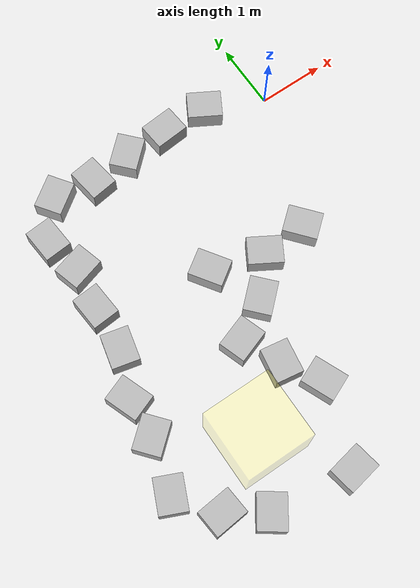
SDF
<sdf version="1.6">
 <world name="default">
  <model name="ground_plane">
   <static>1</static>
   <link name="link">
    <collision name="collision">
     <geometry><plane><normal>0 0 1</normal><size>100 100</size></plane></geometry>
     <surface><friction><ode><mu>100</mu><mu2>50</mu2></ode></friction></surface>
    </collision>
    <visual name="visual">
     <cast_shadows>0</cast_shadows>
     <geometry><plane><normal>0 0 1</normal><size>100 100</size></plane></geometry>
     <material>
      <script><uri>file://media/materials/scripts/gazebo.material</uri><name>Gazebo/Grey</name></script>
     </material>
    </visual>
   </link>
  </model>
  <model name="RegionEventBox_0">
   <static>1</static>
   <pose>-3.01163 -4.00619 0 0 -0 0</pose>
   <link name="link">
    <visual name="visual">
     <transparency>0.75</transparency>
     <geometry><box><size>1 1 1.75</size></box></geometry>
     <material>
      <script><uri>file://media/materials/scripts/gazebo.material</uri><name>Gazebo/Yellow</name></script>
     </material>
    </visual>
   </link>
   <plugin name="region_event_box" filename="libRegionEventBoxPlugin.so">
    <event><name>model_in_region_event_box</name><type>inclusion</type><active>1</active></event>
   </plugin>
  </model>
  <model name="cardboard_box_clone_clone_clone_clone_0_clone_clone_clone_0_clone">
   <link name="link">
    <inertial>
     <mass>2</mass>
     <inertia>
      <ixx>0.0416667</ixx>
      <ixy>0</ixy>
      <ixz>0</ixz>
      <iyy>0.0566667</iyy>
      <iyz>0</iyz>
      <izz>0.0683333</izz>
     </inertia>
    </inertial>
    <visual name="visual">
     <pose>0 0 -0.15 0 -0 0</pose>
     <geometry>
      <mesh><uri>model://cardboard_box/meshes/cardboard_box.dae</uri><scale>1.25932 1.00745 0.755591</scale></mesh>
     </geometry>
    </visual>
    <collision name="collision">
     <geometry><box><size>0.5 0.4 0.3</size></box></geometry>
     <surface>
      <friction>
       <ode><mu>1</mu><mu2>1</mu2><fdir1>0 0 0</fdir1><slip1>0</slip1><slip2>0</slip2></ode>
       <torsional>
        <coefficient>1</coefficient>
        <patch_radius>0</patch_radius>
        <surface_radius>0</surface_radius>
        <use_patch_radius>1</use_patch_radius>
        <ode><slip>0</slip></ode>
       </torsional>
      </friction>
      <bounce><restitution_coefficient>0</restitution_coefficient><threshold>1e+06</threshold></bounce>
      <contact>
       <collide_without_contact>0</collide_without_contact>
       <collide_without_contact_bitmask>1</collide_without_contact_bitmask>
       <collide_bitmask>1</collide_bitmask>
       <ode>
        <soft_cfm>0</soft_cfm>
        <soft_erp>0.2</soft_erp>
        <kp>1e+07</kp>
        <kd>1</kd>
        <max_vel>0.1</max_vel>
        <min_depth>0.001</min_depth>
       </ode>
       <bullet>
        <split_impulse>1</split_impulse>
        <split_impulse_penetration_threshold>-0.01</split_impulse_penetration_threshold>
        <soft_cfm>0</soft_cfm>
        <soft_erp>0.2</soft_erp>
        <kp>1e+07</kp>
        <kd>1</kd>
       </bullet>
      </contact>
     </surface>
    </collision>
   </link>
   <static>1</static>
   <pose>-1.55415 0.335481 0.15 0 0 -3.04875</pose>
  </model>
  <model name="cardboard_box_clone_clone_clone_clone_0_clone_clone_clone_0_clone_0">
   <link name="link">
    <inertial>
     <mass>2</mass>
     <inertia>
      <ixx>0.0416667</ixx>
      <ixy>0</ixy>
      <ixz>0</ixz>
      <iyy>0.0566667</iyy>
      <iyz>0</iyz>
      <izz>0.0683333</izz>
     </inertia>
    </inertial>
    <visual name="visual">
     <pose>0 0 -0.15 0 -0 0</pose>
     <geometry>
      <mesh><uri>model://cardboard_box/meshes/cardboard_box.dae</uri><scale>1.25932 1.00745 0.755591</scale></mesh>
     </geometry>
    </visual>
    <collision name="collision">
     <geometry><box><size>0.5 0.4 0.3</size></box></geometry>
     <surface>
      <friction>
       <ode><mu>1</mu><mu2>1</mu2><fdir1>0 0 0</fdir1><slip1>0</slip1><slip2>0</slip2></ode>
       <torsional>
        <coefficient>1</coefficient>
        <patch_radius>0</patch_radius>
        <surface_radius>0</surface_radius>
        <use_patch_radius>1</use_patch_radius>
        <ode><slip>0</slip></ode>
       </torsional>
      </friction>
      <bounce><restitution_coefficient>0</restitution_coefficient><threshold>1e+06</threshold></bounce>
      <contact>
       <collide_without_contact>0</collide_without_contact>
       <collide_without_contact_bitmask>1</collide_without_contact_bitmask>
       <collide_bitmask>1</collide_bitmask>
       <ode>
        <soft_cfm>0</soft_cfm>
        <soft_erp>0.2</soft_erp>
        <kp>1e+07</kp>
        <kd>1</kd>
        <max_vel>0.1</max_vel>
        <min_depth>0.001</min_depth>
       </ode>
       <bullet>
        <split_impulse>1</split_impulse>
        <split_impulse_penetration_threshold>-0.01</split_impulse_penetration_threshold>
        <soft_cfm>0</soft_cfm>
        <soft_erp>0.2</soft_erp>
        <kp>1e+07</kp>
        <kd>1</kd>
       </bullet>
      </contact>
     </surface>
    </collision>
   </link>
   <static>1</static>
   <pose>-0.862628 0.321441 0.15 0 -0 2.62469</pose>
  </model>
  <model name="cardboard_box_clone_clone_clone_clone_0_clone_clone_clone_0_clone_11_clone_clone_17">
   <link name="link">
    <inertial>
     <mass>2</mass>
     <inertia>
      <ixx>0.0416667</ixx>
      <ixy>0</ixy>
      <ixz>0</ixz>
      <iyy>0.0566667</iyy>
      <iyz>0</iyz>
      <izz>0.0683333</izz>
     </inertia>
    </inertial>
    <visual name="visual">
     <pose>0 0 -0.15 0 -0 0</pose>
     <geometry>
      <mesh><uri>model://cardboard_box/meshes/cardboard_box.dae</uri><scale>1.25932 1.00745 0.755591</scale></mesh>
     </geometry>
    </visual>
    <collision name="collision">
     <geometry><box><size>0.5 0.4 0.3</size></box></geometry>
     <surface>
      <friction>
       <ode><mu>1</mu><mu2>1</mu2><fdir1>0 0 0</fdir1><slip1>0</slip1><slip2>0</slip2></ode>
       <torsional>
        <coefficient>1</coefficient>
        <patch_radius>0</patch_radius>
        <surface_radius>0</surface_radius>
        <use_patch_radius>1</use_patch_radius>
        <ode><slip>0</slip></ode>
       </torsional>
      </friction>
      <bounce><restitution_coefficient>0</restitution_coefficient><threshold>1e+06</threshold></bounce>
      <contact>
       <collide_without_contact>0</collide_without_contact>
       <collide_without_contact_bitmask>1</collide_without_contact_bitmask>
       <collide_bitmask>1</collide_bitmask>
       <ode>
        <soft_cfm>0</soft_cfm>
        <soft_erp>0.2</soft_erp>
        <kp>1e+07</kp>
        <kd>1</kd>
        <max_vel>0.1</max_vel>
        <min_depth>0.001</min_depth>
       </ode>
       <bullet>
        <split_impulse>1</split_impulse>
        <split_impulse_penetration_threshold>-0.01</split_impulse_penetration_threshold>
        <soft_cfm>0</soft_cfm>
        <soft_erp>0.2</soft_erp>
        <kp>1e+07</kp>
        <kd>1</kd>
       </bullet>
      </contact>
     </surface>
    </collision>
   </link>
   <static>1</static>
   <pose>-3.42427 -4.94163 0.15 0 0 -2.17306</pose>
  </model>
  <model name="cardboard_box_clone_clone_clone_clone_0_clone_clone_clone_0_clone_11_clone_clone_18">
   <link name="link">
    <inertial>
     <mass>2</mass>
     <inertia>
      <ixx>0.0416667</ixx>
      <ixy>0</ixy>
      <ixz>0</ixz>
      <iyy>0.0566667</iyy>
      <iyz>0</iyz>
      <izz>0.0683333</izz>
     </inertia>
    </inertial>
    <visual name="visual">
     <pose>0 0 -0.15 0 -0 0</pose>
     <geometry>
      <mesh><uri>model://cardboard_box/meshes/cardboard_box.dae</uri><scale>1.25932 1.00745 0.755591</scale></mesh>
     </geometry>
    </visual>
    <collision name="collision">
     <geometry><box><size>0.5 0.4 0.3</size></box></geometry>
     <surface>
      <friction>
       <ode><mu>1</mu><mu2>1</mu2><fdir1>0 0 0</fdir1><slip1>0</slip1><slip2>0</slip2></ode>
       <torsional>
        <coefficient>1</coefficient>
        <patch_radius>0</patch_radius>
        <surface_radius>0</surface_radius>
        <use_patch_radius>1</use_patch_radius>
        <ode><slip>0</slip></ode>
       </torsional>
      </friction>
      <bounce><restitution_coefficient>0</restitution_coefficient><threshold>1e+06</threshold></bounce>
      <contact>
       <collide_without_contact>0</collide_without_contact>
       <collide_without_contact_bitmask>1</collide_without_contact_bitmask>
       <collide_bitmask>1</collide_bitmask>
       <ode>
        <soft_cfm>0</soft_cfm>
        <soft_erp>0.2</soft_erp>
        <kp>1e+07</kp>
        <kd>1</kd>
        <max_vel>0.1</max_vel>
        <min_depth>0.001</min_depth>
       </ode>
       <bullet>
        <split_impulse>1</split_impulse>
        <split_impulse_penetration_threshold>-0.01</split_impulse_penetration_threshold>
        <soft_cfm>0</soft_cfm>
        <soft_erp>0.2</soft_erp>
        <kp>1e+07</kp>
        <kd>1</kd>
       </bullet>
      </contact>
     </surface>
    </collision>
   </link>
   <static>1</static>
   <pose>-3.94711 -4.59424 0.15 0 0 -3.04767</pose>
  </model>
  <model name="cardboard_box_clone_clone_clone_clone_0_clone_clone_clone_0_clone_11_clone_clone_19">
   <link name="link">
    <inertial>
     <mass>2</mass>
     <inertia>
      <ixx>0.0416667</ixx>
      <ixy>0</ixy>
      <ixz>0</ixz>
      <iyy>0.0566667</iyy>
      <iyz>0</iyz>
      <izz>0.0683333</izz>
     </inertia>
    </inertial>
    <visual name="visual">
     <pose>0 0 -0.15 0 -0 0</pose>
     <geometry>
      <mesh><uri>model://cardboard_box/meshes/cardboard_box.dae</uri><scale>1.25932 1.00745 0.755591</scale></mesh>
     </geometry>
    </visual>
    <collision name="collision">
     <geometry><box><size>0.5 0.4 0.3</size></box></geometry>
     <surface>
      <friction>
       <ode><mu>1</mu><mu2>1</mu2><fdir1>0 0 0</fdir1><slip1>0</slip1><slip2>0</slip2></ode>
       <torsional>
        <coefficient>1</coefficient>
        <patch_radius>0</patch_radius>
        <surface_radius>0</surface_radius>
        <use_patch_radius>1</use_patch_radius>
        <ode><slip>0</slip></ode>
       </torsional>
      </friction>
      <bounce><restitution_coefficient>0</restitution_coefficient><threshold>1e+06</threshold></bounce>
      <contact>
       <collide_without_contact>0</collide_without_contact>
       <collide_without_contact_bitmask>1</collide_without_contact_bitmask>
       <collide_bitmask>1</collide_bitmask>
       <ode>
        <soft_cfm>0</soft_cfm>
        <soft_erp>0.2</soft_erp>
        <kp>1e+07</kp>
        <kd>1</kd>
        <max_vel>0.1</max_vel>
        <min_depth>0.001</min_depth>
       </ode>
       <bullet>
        <split_impulse>1</split_impulse>
        <split_impulse_penetration_threshold>-0.01</split_impulse_penetration_threshold>
        <soft_cfm>0</soft_cfm>
        <soft_erp>0.2</soft_erp>
        <kp>1e+07</kp>
        <kd>1</kd>
       </bullet>
      </contact>
     </surface>
    </collision>
   </link>
   <static>1</static>
   <pose>-4.3699 -4.04112 0.15 0 0 -1.98998</pose>
  </model>
  <model name="cardboard_box_clone_clone_clone_clone_0_clone_clone_clone_0_clone_11_clone_clone_20">
   <link name="link">
    <inertial>
     <mass>2</mass>
     <inertia>
      <ixx>0.0416667</ixx>
      <ixy>0</ixy>
      <ixz>0</ixz>
      <iyy>0.0566667</iyy>
      <iyz>0</iyz>
      <izz>0.0683333</izz>
     </inertia>
    </inertial>
    <visual name="visual">
     <pose>0 0 -0.15 0 -0 0</pose>
     <geometry>
      <mesh><uri>model://cardboard_box/meshes/cardboard_box.dae</uri><scale>1.25932 1.00745 0.755591</scale></mesh>
     </geometry>
    </visual>
    <collision name="collision">
     <geometry><box><size>0.5 0.4 0.3</size></box></geometry>
     <surface>
      <friction>
       <ode><mu>1</mu><mu2>1</mu2><fdir1>0 0 0</fdir1><slip1>0</slip1><slip2>0</slip2></ode>
       <torsional>
        <coefficient>1</coefficient>
        <patch_radius>0</patch_radius>
        <surface_radius>0</surface_radius>
        <use_patch_radius>1</use_patch_radius>
        <ode><slip>0</slip></ode>
       </torsional>
      </friction>
      <bounce><restitution_coefficient>0</restitution_coefficient><threshold>1e+06</threshold></bounce>
      <contact>
       <collide_without_contact>0</collide_without_contact>
       <collide_without_contact_bitmask>1</collide_without_contact_bitmask>
       <collide_bitmask>1</collide_bitmask>
       <ode>
        <soft_cfm>0</soft_cfm>
        <soft_erp>0.2</soft_erp>
        <kp>1e+07</kp>
        <kd>1</kd>
        <max_vel>0.1</max_vel>
        <min_depth>0.001</min_depth>
       </ode>
       <bullet>
        <split_impulse>1</split_impulse>
        <split_impulse_penetration_threshold>-0.01</split_impulse_penetration_threshold>
        <soft_cfm>0</soft_cfm>
        <soft_erp>0.2</soft_erp>
        <kp>1e+07</kp>
        <kd>1</kd>
       </bullet>
      </contact>
     </surface>
    </collision>
   </link>
   <static>1</static>
   <pose>-4.15247 -3.27407 0.15 0 0 -2.44164</pose>
  </model>
  <model name="cardboard_box_clone_clone_clone_clone_0_clone_clone_clone_0_clone_11_clone_clone_21">
   <link name="link">
    <inertial>
     <mass>2</mass>
     <inertia>
      <ixx>0.0416667</ixx>
      <ixy>0</ixy>
      <ixz>0</ixz>
      <iyy>0.0566667</iyy>
      <iyz>0</iyz>
      <izz>0.0683333</izz>
     </inertia>
    </inertial>
    <visual name="visual">
     <pose>0 0 -0.15 0 -0 0</pose>
     <geometry>
      <mesh><uri>model://cardboard_box/meshes/cardboard_box.dae</uri><scale>1.25932 1.00745 0.755591</scale></mesh>
     </geometry>
    </visual>
    <collision name="collision">
     <geometry><box><size>0.5 0.4 0.3</size></box></geometry>
     <surface>
      <friction>
       <ode><mu>1</mu><mu2>1</mu2><fdir1>0 0 0</fdir1><slip1>0</slip1><slip2>0</slip2></ode>
       <torsional>
        <coefficient>1</coefficient>
        <patch_radius>0</patch_radius>
        <surface_radius>0</surface_radius>
        <use_patch_radius>1</use_patch_radius>
        <ode><slip>0</slip></ode>
       </torsional>
      </friction>
      <bounce><restitution_coefficient>0</restitution_coefficient><threshold>1e+06</threshold></bounce>
      <contact>
       <collide_without_contact>0</collide_without_contact>
       <collide_without_contact_bitmask>1</collide_without_contact_bitmask>
       <collide_bitmask>1</collide_bitmask>
       <ode>
        <soft_cfm>0</soft_cfm>
        <soft_erp>0.2</soft_erp>
        <kp>1e+07</kp>
        <kd>1</kd>
        <max_vel>0.1</max_vel>
        <min_depth>0.001</min_depth>
       </ode>
       <bullet>
        <split_impulse>1</split_impulse>
        <split_impulse_penetration_threshold>-0.01</split_impulse_penetration_threshold>
        <soft_cfm>0</soft_cfm>
        <soft_erp>0.2</soft_erp>
        <kp>1e+07</kp>
        <kd>1</kd>
       </bullet>
      </contact>
     </surface>
    </collision>
   </link>
   <static>1</static>
   <pose>-4.12566 -2.6949 0.15 0 0 -1.21011</pose>
  </model>
  <model name="cardboard_box_clone_clone_clone_clone_0_clone_clone_clone_0_clone_11_clone_clone_22">
   <link name="link">
    <inertial>
     <mass>2</mass>
     <inertia>
      <ixx>0.0416667</ixx>
      <ixy>0</ixy>
      <ixz>0</ixz>
      <iyy>0.0566667</iyy>
      <iyz>0</iyz>
      <izz>0.0683333</izz>
     </inertia>
    </inertial>
    <visual name="visual">
     <pose>0 0 -0.15 0 -0 0</pose>
     <geometry>
      <mesh><uri>model://cardboard_box/meshes/cardboard_box.dae</uri><scale>1.25932 1.00745 0.755591</scale></mesh>
     </geometry>
    </visual>
    <collision name="collision">
     <geometry><box><size>0.5 0.4 0.3</size></box></geometry>
     <surface>
      <friction>
       <ode><mu>1</mu><mu2>1</mu2><fdir1>0 0 0</fdir1><slip1>0</slip1><slip2>0</slip2></ode>
       <torsional>
        <coefficient>1</coefficient>
        <patch_radius>0</patch_radius>
        <surface_radius>0</surface_radius>
        <use_patch_radius>1</use_patch_radius>
        <ode><slip>0</slip></ode>
       </torsional>
      </friction>
      <bounce><restitution_coefficient>0</restitution_coefficient><threshold>1e+06</threshold></bounce>
      <contact>
       <collide_without_contact>0</collide_without_contact>
       <collide_without_contact_bitmask>1</collide_without_contact_bitmask>
       <collide_bitmask>1</collide_bitmask>
       <ode>
        <soft_cfm>0</soft_cfm>
        <soft_erp>0.2</soft_erp>
        <kp>1e+07</kp>
        <kd>1</kd>
        <max_vel>0.1</max_vel>
        <min_depth>0.001</min_depth>
       </ode>
       <bullet>
        <split_impulse>1</split_impulse>
        <split_impulse_penetration_threshold>-0.01</split_impulse_penetration_threshold>
        <soft_cfm>0</soft_cfm>
        <soft_erp>0.2</soft_erp>
        <kp>1e+07</kp>
        <kd>1</kd>
       </bullet>
      </contact>
     </surface>
    </collision>
   </link>
   <static>1</static>
   <pose>-3.85576 -2.05701 0.15 0 0 -1.79888</pose>
  </model>
  <model name="cardboard_box_clone_clone_clone_clone_0_clone_clone_clone_0_clone_11_clone_clone_23">
   <link name="link">
    <inertial>
     <mass>2</mass>
     <inertia>
      <ixx>0.0416667</ixx>
      <ixy>0</ixy>
      <ixz>0</ixz>
      <iyy>0.0566667</iyy>
      <iyz>0</iyz>
      <izz>0.0683333</izz>
     </inertia>
    </inertial>
    <visual name="visual">
     <pose>0 0 -0.15 0 -0 0</pose>
     <geometry>
      <mesh><uri>model://cardboard_box/meshes/cardboard_box.dae</uri><scale>1.25932 1.00745 0.755591</scale></mesh>
     </geometry>
    </visual>
    <collision name="collision">
     <geometry><box><size>0.5 0.4 0.3</size></box></geometry>
     <surface>
      <friction>
       <ode><mu>1</mu><mu2>1</mu2><fdir1>0 0 0</fdir1><slip1>0</slip1><slip2>0</slip2></ode>
       <torsional>
        <coefficient>1</coefficient>
        <patch_radius>0</patch_radius>
        <surface_radius>0</surface_radius>
        <use_patch_radius>1</use_patch_radius>
        <ode><slip>0</slip></ode>
       </torsional>
      </friction>
      <bounce><restitution_coefficient>0</restitution_coefficient><threshold>1e+06</threshold></bounce>
      <contact>
       <collide_without_contact>0</collide_without_contact>
       <collide_without_contact_bitmask>1</collide_without_contact_bitmask>
       <collide_bitmask>1</collide_bitmask>
       <ode>
        <soft_cfm>0</soft_cfm>
        <soft_erp>0.2</soft_erp>
        <kp>1e+07</kp>
        <kd>1</kd>
        <max_vel>0.1</max_vel>
        <min_depth>0.001</min_depth>
       </ode>
       <bullet>
        <split_impulse>1</split_impulse>
        <split_impulse_penetration_threshold>-0.01</split_impulse_penetration_threshold>
        <soft_cfm>0</soft_cfm>
        <soft_erp>0.2</soft_erp>
        <kp>1e+07</kp>
        <kd>1</kd>
       </bullet>
      </contact>
     </surface>
    </collision>
   </link>
   <static>1</static>
   <pose>-3.81523 -1.38251 0.15 0 0 -1.48988</pose>
  </model>
  <model name="cardboard_box_clone_clone_clone_clone_0_clone_clone_clone_0_clone_11_clone_clone_24">
   <link name="link">
    <inertial>
     <mass>2</mass>
     <inertia>
      <ixx>0.0416667</ixx>
      <ixy>0</ixy>
      <ixz>0</ixz>
      <iyy>0.0566667</iyy>
      <iyz>0</iyz>
      <izz>0.0683333</izz>
     </inertia>
    </inertial>
    <visual name="visual">
     <pose>0 0 -0.15 0 -0 0</pose>
     <geometry>
      <mesh><uri>model://cardboard_box/meshes/cardboard_box.dae</uri><scale>1.25932 1.00745 0.755591</scale></mesh>
     </geometry>
    </visual>
    <collision name="collision">
     <geometry><box><size>0.5 0.4 0.3</size></box></geometry>
     <surface>
      <friction>
       <ode><mu>1</mu><mu2>1</mu2><fdir1>0 0 0</fdir1><slip1>0</slip1><slip2>0</slip2></ode>
       <torsional>
        <coefficient>1</coefficient>
        <patch_radius>0</patch_radius>
        <surface_radius>0</surface_radius>
        <use_patch_radius>1</use_patch_radius>
        <ode><slip>0</slip></ode>
       </torsional>
      </friction>
      <bounce><restitution_coefficient>0</restitution_coefficient><threshold>1e+06</threshold></bounce>
      <contact>
       <collide_without_contact>0</collide_without_contact>
       <collide_without_contact_bitmask>1</collide_without_contact_bitmask>
       <collide_bitmask>1</collide_bitmask>
       <ode>
        <soft_cfm>0</soft_cfm>
        <soft_erp>0.2</soft_erp>
        <kp>1e+07</kp>
        <kd>1</kd>
        <max_vel>0.1</max_vel>
        <min_depth>0.001</min_depth>
       </ode>
       <bullet>
        <split_impulse>1</split_impulse>
        <split_impulse_penetration_threshold>-0.01</split_impulse_penetration_threshold>
        <soft_cfm>0</soft_cfm>
        <soft_erp>0.2</soft_erp>
        <kp>1e+07</kp>
        <kd>1</kd>
       </bullet>
      </contact>
     </surface>
    </collision>
   </link>
   <static>1</static>
   <pose>-3.70999 -0.762884 0.15 0 0 -2.85617</pose>
  </model>
  <model name="cardboard_box_clone_clone_clone_clone_0_clone_clone_clone_0_clone_11_clone_clone_25">
   <link name="link">
    <inertial>
     <mass>2</mass>
     <inertia>
      <ixx>0.0416667</ixx>
      <ixy>0</ixy>
      <ixz>0</ixz>
      <iyy>0.0566667</iyy>
      <iyz>0</iyz>
      <izz>0.0683333</izz>
     </inertia>
    </inertial>
    <visual name="visual">
     <pose>0 0 -0.15 0 -0 0</pose>
     <geometry>
      <mesh><uri>model://cardboard_box/meshes/cardboard_box.dae</uri><scale>1.25932 1.00745 0.755591</scale></mesh>
     </geometry>
    </visual>
    <collision name="collision">
     <geometry><box><size>0.5 0.4 0.3</size></box></geometry>
     <surface>
      <friction>
       <ode><mu>1</mu><mu2>1</mu2><fdir1>0 0 0</fdir1><slip1>0</slip1><slip2>0</slip2></ode>
       <torsional>
        <coefficient>1</coefficient>
        <patch_radius>0</patch_radius>
        <surface_radius>0</surface_radius>
        <use_patch_radius>1</use_patch_radius>
        <ode><slip>0</slip></ode>
       </torsional>
      </friction>
      <bounce><restitution_coefficient>0</restitution_coefficient><threshold>1e+06</threshold></bounce>
      <contact>
       <collide_without_contact>0</collide_without_contact>
       <collide_without_contact_bitmask>1</collide_without_contact_bitmask>
       <collide_bitmask>1</collide_bitmask>
       <ode>
        <soft_cfm>0</soft_cfm>
        <soft_erp>0.2</soft_erp>
        <kp>1e+07</kp>
        <kd>1</kd>
        <max_vel>0.1</max_vel>
        <min_depth>0.001</min_depth>
       </ode>
       <bullet>
        <split_impulse>1</split_impulse>
        <split_impulse_penetration_threshold>-0.01</split_impulse_penetration_threshold>
        <soft_cfm>0</soft_cfm>
        <soft_erp>0.2</soft_erp>
        <kp>1e+07</kp>
        <kd>1</kd>
       </bullet>
      </contact>
     </surface>
    </collision>
   </link>
   <static>1</static>
   <pose>-3.83779 -0.191951 0.15 0 0 -1.4881</pose>
  </model>
  <model name="cardboard_box_clone_clone_clone_clone_0_clone_clone_clone_0_clone_11_clone_clone_26">
   <link name="link">
    <inertial>
     <mass>2</mass>
     <inertia>
      <ixx>0.0416667</ixx>
      <ixy>0</ixy>
      <ixz>0</ixz>
      <iyy>0.0566667</iyy>
      <iyz>0</iyz>
      <izz>0.0683333</izz>
     </inertia>
    </inertial>
    <visual name="visual">
     <pose>0 0 -0.15 0 -0 0</pose>
     <geometry>
      <mesh><uri>model://cardboard_box/meshes/cardboard_box.dae</uri><scale>1.25932 1.00745 0.755591</scale></mesh>
     </geometry>
    </visual>
    <collision name="collision">
     <geometry><box><size>0.5 0.4 0.3</size></box></geometry>
     <surface>
      <friction>
       <ode><mu>1</mu><mu2>1</mu2><fdir1>0 0 0</fdir1><slip1>0</slip1><slip2>0</slip2></ode>
       <torsional>
        <coefficient>1</coefficient>
        <patch_radius>0</patch_radius>
        <surface_radius>0</surface_radius>
        <use_patch_radius>1</use_patch_radius>
        <ode><slip>0</slip></ode>
       </torsional>
      </friction>
      <bounce><restitution_coefficient>0</restitution_coefficient><threshold>1e+06</threshold></bounce>
      <contact>
       <collide_without_contact>0</collide_without_contact>
       <collide_without_contact_bitmask>1</collide_without_contact_bitmask>
       <collide_bitmask>1</collide_bitmask>
       <ode>
        <soft_cfm>0</soft_cfm>
        <soft_erp>0.2</soft_erp>
        <kp>1e+07</kp>
        <kd>1</kd>
        <max_vel>0.1</max_vel>
        <min_depth>0.001</min_depth>
       </ode>
       <bullet>
        <split_impulse>1</split_impulse>
        <split_impulse_penetration_threshold>-0.01</split_impulse_penetration_threshold>
        <soft_cfm>0</soft_cfm>
        <soft_erp>0.2</soft_erp>
        <kp>1e+07</kp>
        <kd>1</kd>
       </bullet>
      </contact>
     </surface>
    </collision>
   </link>
   <static>1</static>
   <pose>-3.41559 0.32689 0.15 0 0 -2.52199</pose>
  </model>
  <model name="cardboard_box_clone_clone_clone_clone_0_clone_clone_clone_0_clone_11_clone_clone_27">
   <link name="link">
    <inertial>
     <mass>2</mass>
     <inertia>
      <ixx>0.0416667</ixx>
      <ixy>0</ixy>
      <ixz>0</ixz>
      <iyy>0.0566667</iyy>
      <iyz>0</iyz>
      <izz>0.0683333</izz>
     </inertia>
    </inertial>
    <visual name="visual">
     <pose>0 0 -0.15 0 -0 0</pose>
     <geometry>
      <mesh><uri>model://cardboard_box/meshes/cardboard_box.dae</uri><scale>1.25932 1.00745 0.755591</scale></mesh>
     </geometry>
    </visual>
    <collision name="collision">
     <geometry><box><size>0.5 0.4 0.3</size></box></geometry>
     <surface>
      <friction>
       <ode><mu>1</mu><mu2>1</mu2><fdir1>0 0 0</fdir1><slip1>0</slip1><slip2>0</slip2></ode>
       <torsional>
        <coefficient>1</coefficient>
        <patch_radius>0</patch_radius>
        <surface_radius>0</surface_radius>
        <use_patch_radius>1</use_patch_radius>
        <ode><slip>0</slip></ode>
       </torsional>
      </friction>
      <bounce><restitution_coefficient>0</restitution_coefficient><threshold>1e+06</threshold></bounce>
      <contact>
       <collide_without_contact>0</collide_without_contact>
       <collide_without_contact_bitmask>1</collide_without_contact_bitmask>
       <collide_bitmask>1</collide_bitmask>
       <ode>
        <soft_cfm>0</soft_cfm>
        <soft_erp>0.2</soft_erp>
        <kp>1e+07</kp>
        <kd>1</kd>
        <max_vel>0.1</max_vel>
        <min_depth>0.001</min_depth>
       </ode>
       <bullet>
        <split_impulse>1</split_impulse>
        <split_impulse_penetration_threshold>-0.01</split_impulse_penetration_threshold>
        <soft_cfm>0</soft_cfm>
        <soft_erp>0.2</soft_erp>
        <kp>1e+07</kp>
        <kd>1</kd>
       </bullet>
      </contact>
     </surface>
    </collision>
   </link>
   <static>1</static>
   <pose>-2.82315 0.241017 0.15 0 0 -1.42592</pose>
  </model>
  <model name="cardboard_box_clone_clone_clone_clone_0_clone_clone_clone_0_clone_11_clone_clone_28">
   <link name="link">
    <inertial>
     <mass>2</mass>
     <inertia>
      <ixx>0.0416667</ixx>
      <ixy>0</ixy>
      <ixz>0</ixz>
      <iyy>0.0566667</iyy>
      <iyz>0</iyz>
      <izz>0.0683333</izz>
     </inertia>
    </inertial>
    <visual name="visual">
     <pose>0 0 -0.15 0 -0 0</pose>
     <geometry>
      <mesh><uri>model://cardboard_box/meshes/cardboard_box.dae</uri><scale>1.25932 1.00745 0.755591</scale></mesh>
     </geometry>
    </visual>
    <collision name="collision">
     <geometry><box><size>0.5 0.4 0.3</size></box></geometry>
     <surface>
      <friction>
       <ode><mu>1</mu><mu2>1</mu2><fdir1>0 0 0</fdir1><slip1>0</slip1><slip2>0</slip2></ode>
       <torsional>
        <coefficient>1</coefficient>
        <patch_radius>0</patch_radius>
        <surface_radius>0</surface_radius>
        <use_patch_radius>1</use_patch_radius>
        <ode><slip>0</slip></ode>
       </torsional>
      </friction>
      <bounce><restitution_coefficient>0</restitution_coefficient><threshold>1e+06</threshold></bounce>
      <contact>
       <collide_without_contact>0</collide_without_contact>
       <collide_without_contact_bitmask>1</collide_without_contact_bitmask>
       <collide_bitmask>1</collide_bitmask>
       <ode>
        <soft_cfm>0</soft_cfm>
        <soft_erp>0.2</soft_erp>
        <kp>1e+07</kp>
        <kd>1</kd>
        <max_vel>0.1</max_vel>
        <min_depth>0.001</min_depth>
       </ode>
       <bullet>
        <split_impulse>1</split_impulse>
        <split_impulse_penetration_threshold>-0.01</split_impulse_penetration_threshold>
        <soft_cfm>0</soft_cfm>
        <soft_erp>0.2</soft_erp>
        <kp>1e+07</kp>
        <kd>1</kd>
       </bullet>
      </contact>
     </surface>
    </collision>
   </link>
   <static>1</static>
   <pose>-2.20552 0.314698 0.15 0 0 -2.39764</pose>
  </model>
  <model name="cardboard_box_clone_clone_clone_clone_0_clone_clone_clone_0_clone_11_clone_clone_29">
   <link name="link">
    <inertial>
     <mass>2</mass>
     <inertia>
      <ixx>0.0416667</ixx>
      <ixy>0</ixy>
      <ixz>0</ixz>
      <iyy>0.0566667</iyy>
      <iyz>0</iyz>
      <izz>0.0683333</izz>
     </inertia>
    </inertial>
    <visual name="visual">
     <pose>0 0 -0.15 0 -0 0</pose>
     <geometry>
      <mesh><uri>model://cardboard_box/meshes/cardboard_box.dae</uri><scale>1.25932 1.00745 0.755591</scale></mesh>
     </geometry>
    </visual>
    <collision name="collision">
     <geometry><box><size>0.5 0.4 0.3</size></box></geometry>
     <surface>
      <friction>
       <ode><mu>1</mu><mu2>1</mu2><fdir1>0 0 0</fdir1><slip1>0</slip1><slip2>0</slip2></ode>
       <torsional>
        <coefficient>1</coefficient>
        <patch_radius>0</patch_radius>
        <surface_radius>0</surface_radius>
        <use_patch_radius>1</use_patch_radius>
        <ode><slip>0</slip></ode>
       </torsional>
      </friction>
      <bounce><restitution_coefficient>0</restitution_coefficient><threshold>1e+06</threshold></bounce>
      <contact>
       <collide_without_contact>0</collide_without_contact>
       <collide_without_contact_bitmask>1</collide_without_contact_bitmask>
       <collide_bitmask>1</collide_bitmask>
       <ode>
        <soft_cfm>0</soft_cfm>
        <soft_erp>0.2</soft_erp>
        <kp>1e+07</kp>
        <kd>1</kd>
        <max_vel>0.1</max_vel>
        <min_depth>0.001</min_depth>
       </ode>
       <bullet>
        <split_impulse>1</split_impulse>
        <split_impulse_penetration_threshold>-0.01</split_impulse_penetration_threshold>
        <soft_cfm>0</soft_cfm>
        <soft_erp>0.2</soft_erp>
        <kp>1e+07</kp>
        <kd>1</kd>
       </bullet>
      </contact>
     </surface>
    </collision>
   </link>
   <static>1</static>
   <pose>-1.8789 -2.52133 0.15 0 0 -2.39764</pose>
  </model>
  <model name="cardboard_box_clone_clone_clone_clone_0_clone_clone_clone_0_clone_11_clone_clone_30">
   <link name="link">
    <inertial>
     <mass>2</mass>
     <inertia>
      <ixx>0.0416667</ixx>
      <ixy>0</ixy>
      <ixz>0</ixz>
      <iyy>0.0566667</iyy>
      <iyz>0</iyz>
      <izz>0.0683333</izz>
     </inertia>
    </inertial>
    <visual name="visual">
     <pose>0 0 -0.15 0 -0 0</pose>
     <geometry>
      <mesh><uri>model://cardboard_box/meshes/cardboard_box.dae</uri><scale>1.25932 1.00745 0.755591</scale></mesh>
     </geometry>
    </visual>
    <collision name="collision">
     <geometry><box><size>0.5 0.4 0.3</size></box></geometry>
     <surface>
      <friction>
       <ode><mu>1</mu><mu2>1</mu2><fdir1>0 0 0</fdir1><slip1>0</slip1><slip2>0</slip2></ode>
       <torsional>
        <coefficient>1</coefficient>
        <patch_radius>0</patch_radius>
        <surface_radius>0</surface_radius>
        <use_patch_radius>1</use_patch_radius>
        <ode><slip>0</slip></ode>
       </torsional>
      </friction>
      <bounce><restitution_coefficient>0</restitution_coefficient><threshold>1e+06</threshold></bounce>
      <contact>
       <collide_without_contact>0</collide_without_contact>
       <collide_without_contact_bitmask>1</collide_without_contact_bitmask>
       <collide_bitmask>1</collide_bitmask>
       <ode>
        <soft_cfm>0</soft_cfm>
        <soft_erp>0.2</soft_erp>
        <kp>1e+07</kp>
        <kd>1</kd>
        <max_vel>0.1</max_vel>
        <min_depth>0.001</min_depth>
       </ode>
       <bullet>
        <split_impulse>1</split_impulse>
        <split_impulse_penetration_threshold>-0.01</split_impulse_penetration_threshold>
        <soft_cfm>0</soft_cfm>
        <soft_erp>0.2</soft_erp>
        <kp>1e+07</kp>
        <kd>1</kd>
       </bullet>
      </contact>
     </surface>
    </collision>
   </link>
   <static>1</static>
   <pose>-1.4446 -2.01513 0.15 0 -0 2.61034</pose>
  </model>
  <model name="cardboard_box_clone_clone_clone_clone_0_clone_clone_clone_0_clone_11_clone_clone_31">
   <link name="link">
    <inertial>
     <mass>2</mass>
     <inertia>
      <ixx>0.0416667</ixx>
      <ixy>0</ixy>
      <ixz>0</ixz>
      <iyy>0.0566667</iyy>
      <iyz>0</iyz>
      <izz>0.0683333</izz>
     </inertia>
    </inertial>
    <visual name="visual">
     <pose>0 0 -0.15 0 -0 0</pose>
     <geometry>
      <mesh><uri>model://cardboard_box/meshes/cardboard_box.dae</uri><scale>1.25932 1.00745 0.755591</scale></mesh>
     </geometry>
    </visual>
    <collision name="collision">
     <geometry><box><size>0.5 0.4 0.3</size></box></geometry>
     <surface>
      <friction>
       <ode><mu>1</mu><mu2>1</mu2><fdir1>0 0 0</fdir1><slip1>0</slip1><slip2>0</slip2></ode>
       <torsional>
        <coefficient>1</coefficient>
        <patch_radius>0</patch_radius>
        <surface_radius>0</surface_radius>
        <use_patch_radius>1</use_patch_radius>
        <ode><slip>0</slip></ode>
       </torsional>
      </friction>
      <bounce><restitution_coefficient>0</restitution_coefficient><threshold>1e+06</threshold></bounce>
      <contact>
       <collide_without_contact>0</collide_without_contact>
       <collide_without_contact_bitmask>1</collide_without_contact_bitmask>
       <collide_bitmask>1</collide_bitmask>
       <ode>
        <soft_cfm>0</soft_cfm>
        <soft_erp>0.2</soft_erp>
        <kp>1e+07</kp>
        <kd>1</kd>
        <max_vel>0.1</max_vel>
        <min_depth>0.001</min_depth>
       </ode>
       <bullet>
        <split_impulse>1</split_impulse>
        <split_impulse_penetration_threshold>-0.01</split_impulse_penetration_threshold>
        <soft_cfm>0</soft_cfm>
        <soft_erp>0.2</soft_erp>
        <kp>1e+07</kp>
        <kd>1</kd>
       </bullet>
      </contact>
     </surface>
    </collision>
   </link>
   <static>1</static>
   <pose>-2.21717 -1.79571 0.15 0 -0 2.16515</pose>
  </model>
  <model name="cardboard_box_clone_clone_clone_clone_0_clone_clone_clone_0_clone_11_clone_clone_32">
   <link name="link">
    <inertial>
     <mass>2</mass>
     <inertia>
      <ixx>0.0416667</ixx>
      <ixy>0</ixy>
      <ixz>0</ixz>
      <iyy>0.0566667</iyy>
      <iyz>0</iyz>
      <izz>0.0683333</izz>
     </inertia>
    </inertial>
    <visual name="visual">
     <pose>0 0 -0.15 0 -0 0</pose>
     <geometry>
      <mesh><uri>model://cardboard_box/meshes/cardboard_box.dae</uri><scale>1.25932 1.00745 0.755591</scale></mesh>
     </geometry>
    </visual>
    <collision name="collision">
     <geometry><box><size>0.5 0.4 0.3</size></box></geometry>
     <surface>
      <friction>
       <ode><mu>1</mu><mu2>1</mu2><fdir1>0 0 0</fdir1><slip1>0</slip1><slip2>0</slip2></ode>
       <torsional>
        <coefficient>1</coefficient>
        <patch_radius>0</patch_radius>
        <surface_radius>0</surface_radius>
        <use_patch_radius>1</use_patch_radius>
        <ode><slip>0</slip></ode>
       </torsional>
      </friction>
      <bounce><restitution_coefficient>0</restitution_coefficient><threshold>1e+06</threshold></bounce>
      <contact>
       <collide_without_contact>0</collide_without_contact>
       <collide_without_contact_bitmask>1</collide_without_contact_bitmask>
       <collide_bitmask>1</collide_bitmask>
       <ode>
        <soft_cfm>0</soft_cfm>
        <soft_erp>0.2</soft_erp>
        <kp>1e+07</kp>
        <kd>1</kd>
        <max_vel>0.1</max_vel>
        <min_depth>0.001</min_depth>
       </ode>
       <bullet>
        <split_impulse>1</split_impulse>
        <split_impulse_penetration_threshold>-0.01</split_impulse_penetration_threshold>
        <soft_cfm>0</soft_cfm>
        <soft_erp>0.2</soft_erp>
        <kp>1e+07</kp>
        <kd>1</kd>
       </bullet>
      </contact>
     </surface>
    </collision>
   </link>
   <static>1</static>
   <pose>-2.43028 -2.87214 0.15 0 0 -2.80878</pose>
  </model>
  <model name="cardboard_box_clone_clone_clone_clone_0_clone_clone_clone_0_clone_11_clone_clone_33">
   <link name="link">
    <inertial>
     <mass>2</mass>
     <inertia>
      <ixx>0.0416667</ixx>
      <ixy>0</ixy>
      <ixz>0</ixz>
      <iyy>0.0566667</iyy>
      <iyz>0</iyz>
      <izz>0.0683333</izz>
     </inertia>
    </inertial>
    <visual name="visual">
     <pose>0 0 -0.15 0 -0 0</pose>
     <geometry>
      <mesh><uri>model://cardboard_box/meshes/cardboard_box.dae</uri><scale>1.25932 1.00745 0.755591</scale></mesh>
     </geometry>
    </visual>
    <collision name="collision">
     <geometry><box><size>0.5 0.4 0.3</size></box></geometry>
     <surface>
      <friction>
       <ode><mu>1</mu><mu2>1</mu2><fdir1>0 0 0</fdir1><slip1>0</slip1><slip2>0</slip2></ode>
       <torsional>
        <coefficient>1</coefficient>
        <patch_radius>0</patch_radius>
        <surface_radius>0</surface_radius>
        <use_patch_radius>1</use_patch_radius>
        <ode><slip>0</slip></ode>
       </torsional>
      </friction>
      <bounce><restitution_coefficient>0</restitution_coefficient><threshold>1e+06</threshold></bounce>
      <contact>
       <collide_without_contact>0</collide_without_contact>
       <collide_without_contact_bitmask>1</collide_without_contact_bitmask>
       <collide_bitmask>1</collide_bitmask>
       <ode>
        <soft_cfm>0</soft_cfm>
        <soft_erp>0.2</soft_erp>
        <kp>1e+07</kp>
        <kd>1</kd>
        <max_vel>0.1</max_vel>
        <min_depth>0.001</min_depth>
       </ode>
       <bullet>
        <split_impulse>1</split_impulse>
        <split_impulse_penetration_threshold>-0.01</split_impulse_penetration_threshold>
        <soft_cfm>0</soft_cfm>
        <soft_erp>0.2</soft_erp>
        <kp>1e+07</kp>
        <kd>1</kd>
       </bullet>
      </contact>
     </surface>
    </collision>
   </link>
   <static>1</static>
   <pose>-0.768794 -1.97376 0.15 0 -0 2.26912</pose>
  </model>
  <model name="cardboard_box_clone_clone_clone_clone_0_clone_clone_clone_0_clone_11_clone_clone_40_clone">
   <link name="link">
    <inertial>
     <mass>2</mass>
     <inertia>
      <ixx>0.0416667</ixx>
      <ixy>0</ixy>
      <ixz>0</ixz>
      <iyy>0.0566667</iyy>
      <iyz>0</iyz>
      <izz>0.0683333</izz>
     </inertia>
    </inertial>
    <visual name="visual">
     <pose>0 0 -0.15 0 -0 0</pose>
     <geometry>
      <mesh><uri>model://cardboard_box/meshes/cardboard_box.dae</uri><scale>1.25932 1.00745 0.755591</scale></mesh>
     </geometry>
    </visual>
    <collision name="collision">
     <geometry><box><size>0.5 0.4 0.3</size></box></geometry>
     <surface>
      <friction>
       <ode><mu>1</mu><mu2>1</mu2><fdir1>0 0 0</fdir1><slip1>0</slip1><slip2>0</slip2></ode>
       <torsional>
        <coefficient>1</coefficient>
        <patch_radius>0</patch_radius>
        <surface_radius>0</surface_radius>
        <use_patch_radius>1</use_patch_radius>
        <ode><slip>0</slip></ode>
       </torsional>
      </friction>
      <bounce><restitution_coefficient>0</restitution_coefficient><threshold>1e+06</threshold></bounce>
      <contact>
       <collide_without_contact>0</collide_without_contact>
       <collide_without_contact_bitmask>1</collide_without_contact_bitmask>
       <collide_bitmask>1</collide_bitmask>
       <ode>
        <soft_cfm>0</soft_cfm>
        <soft_erp>0.2</soft_erp>
        <kp>1e+07</kp>
        <kd>1</kd>
        <max_vel>0.1</max_vel>
        <min_depth>0.001</min_depth>
       </ode>
       <bullet>
        <split_impulse>1</split_impulse>
        <split_impulse_penetration_threshold>-0.01</split_impulse_penetration_threshold>
        <soft_cfm>0</soft_cfm>
        <soft_erp>0.2</soft_erp>
        <kp>1e+07</kp>
        <kd>1</kd>
       </bullet>
      </contact>
     </surface>
    </collision>
   </link>
   <static>1</static>
   <pose>-2.23303 -5.09096 0.15 0 -0 0.181742</pose>
  </model>
  <model name="cardboard_box_clone_clone_clone_clone_0_clone_clone_clone_0_clone_8_clone">
   <link name="link">
    <inertial>
     <mass>2</mass>
     <inertia>
      <ixx>0.0416667</ixx>
      <ixy>0</ixy>
      <ixz>0</ixz>
      <iyy>0.0566667</iyy>
      <iyz>0</iyz>
      <izz>0.0683333</izz>
     </inertia>
    </inertial>
    <visual name="visual">
     <pose>0 0 -0.15 0 -0 0</pose>
     <geometry>
      <mesh><uri>model://cardboard_box/meshes/cardboard_box.dae</uri><scale>1.25932 1.00745 0.755591</scale></mesh>
     </geometry>
    </visual>
    <collision name="collision">
     <geometry><box><size>0.5 0.4 0.3</size></box></geometry>
     <surface>
      <friction>
       <ode><mu>1</mu><mu2>1</mu2><fdir1>0 0 0</fdir1><slip1>0</slip1><slip2>0</slip2></ode>
       <torsional>
        <coefficient>1</coefficient>
        <patch_radius>0</patch_radius>
        <surface_radius>0</surface_radius>
        <use_patch_radius>1</use_patch_radius>
        <ode><slip>0</slip></ode>
       </torsional>
      </friction>
      <bounce><restitution_coefficient>0</restitution_coefficient><threshold>1e+06</threshold></bounce>
      <contact>
       <collide_without_contact>0</collide_without_contact>
       <collide_without_contact_bitmask>1</collide_without_contact_bitmask>
       <collide_bitmask>1</collide_bitmask>
       <ode>
        <soft_cfm>0</soft_cfm>
        <soft_erp>0.2</soft_erp>
        <kp>1e+07</kp>
        <kd>1</kd>
        <max_vel>0.1</max_vel>
        <min_depth>0.001</min_depth>
       </ode>
       <bullet>
        <split_impulse>1</split_impulse>
        <split_impulse_penetration_threshold>-0.01</split_impulse_penetration_threshold>
        <soft_cfm>0</soft_cfm>
        <soft_erp>0.2</soft_erp>
        <kp>1e+07</kp>
        <kd>1</kd>
       </bullet>
      </contact>
     </surface>
    </collision>
   </link>
   <static>1</static>
   <pose>-2.17511 -3.41851 0.15 0 -0 1.41338</pose>
  </model>
  <model name="cardboard_box_clone_clone_clone_clone_0_clone_clone_clone_0_clone_11_clone_clone_39_clone">
   <link name="link">
    <inertial>
     <mass>2</mass>
     <inertia>
      <ixx>0.0416667</ixx>
      <ixy>0</ixy>
      <ixz>0</ixz>
      <iyy>0.0566667</iyy>
      <iyz>0</iyz>
      <izz>0.0683333</izz>
     </inertia>
    </inertial>
    <visual name="visual">
     <pose>0 0 -0.15 0 -0 0</pose>
     <geometry>
      <mesh><uri>model://cardboard_box/meshes/cardboard_box.dae</uri><scale>1.25932 1.00745 0.755591</scale></mesh>
     </geometry>
    </visual>
    <collision name="collision">
     <geometry><box><size>0.5 0.4 0.3</size></box></geometry>
     <surface>
      <friction>
       <ode><mu>1</mu><mu2>1</mu2><fdir1>0 0 0</fdir1><slip1>0</slip1><slip2>0</slip2></ode>
       <torsional>
        <coefficient>1</coefficient>
        <patch_radius>0</patch_radius>
        <surface_radius>0</surface_radius>
        <use_patch_radius>1</use_patch_radius>
        <ode><slip>0</slip></ode>
       </torsional>
      </friction>
      <bounce><restitution_coefficient>0</restitution_coefficient><threshold>1e+06</threshold></bounce>
      <contact>
       <collide_without_contact>0</collide_without_contact>
       <collide_without_contact_bitmask>1</collide_without_contact_bitmask>
       <collide_bitmask>1</collide_bitmask>
       <ode>
        <soft_cfm>0</soft_cfm>
        <soft_erp>0.2</soft_erp>
        <kp>1e+07</kp>
        <kd>1</kd>
        <max_vel>0.1</max_vel>
        <min_depth>0.001</min_depth>
       </ode>
       <bullet>
        <split_impulse>1</split_impulse>
        <split_impulse_penetration_threshold>-0.01</split_impulse_penetration_threshold>
        <soft_cfm>0</soft_cfm>
        <soft_erp>0.2</soft_erp>
        <kp>1e+07</kp>
        <kd>1</kd>
       </bullet>
      </contact>
     </surface>
    </collision>
   </link>
   <static>1</static>
   <pose>-1.85016 -3.9299 0.15 0 0 -1.16724</pose>
  </model>
 </world>
</sdf>
